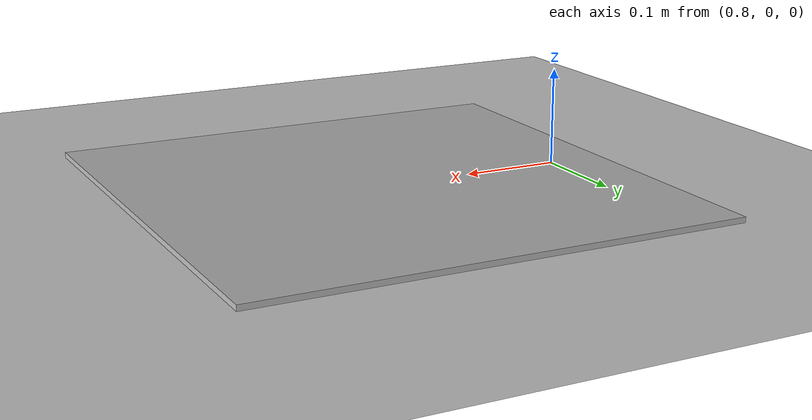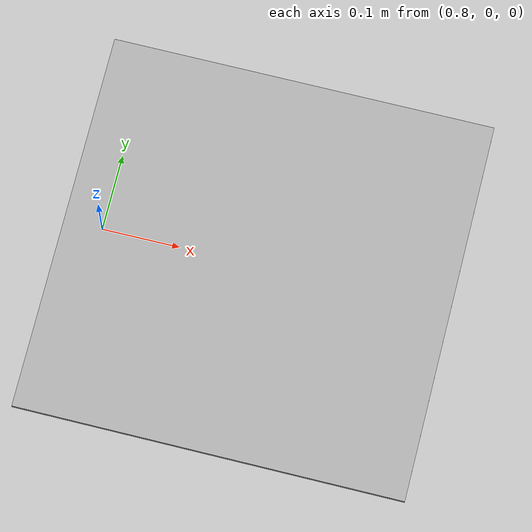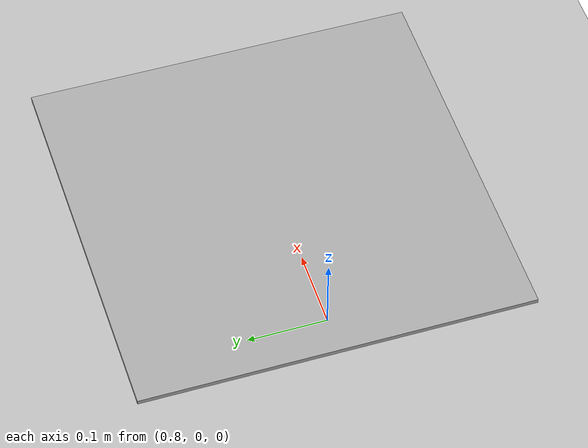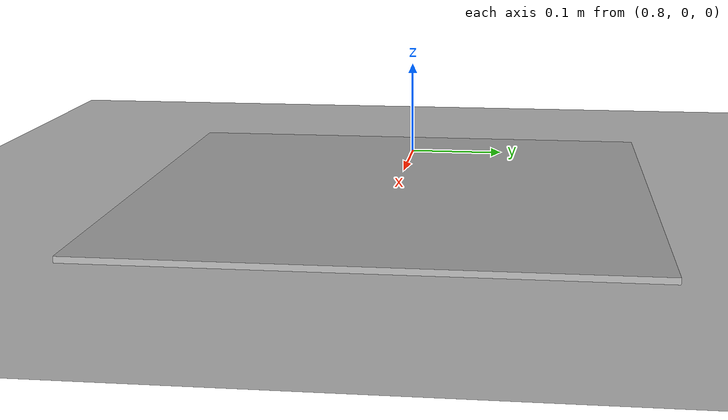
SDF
<?xml version="1.0" ?>
<sdf version="1.5">
  <world name="default">
    <!-- A global light source -->
    <include>
      <uri>model://sun</uri>
    </include>
    <!-- A ground plane -->
    <include>
      <uri>model://ground_plane</uri>
    </include>
    <include>
      <uri>model://multi_mark</uri>
	<pose>1 0 0 0 0 0</pose>
    </include>

    <physics name='default_physics' default='0' type='ode'>
      <gravity>0 0 -9.8066</gravity>
      <ode>
        <solver>
          <type>quick</type>
          <iters>10</iters>
          <sor>1.3</sor>
          <use_dynamic_moi_rescaling>0</use_dynamic_moi_rescaling>
        </solver>
        <constraints>
          <cfm>0</cfm>
          <erp>0.2</erp>
          <contact_max_correcting_vel>100</contact_max_correcting_vel>
          <contact_surface_layer>0.001</contact_surface_layer>
        </constraints>
      </ode>
      <max_step_size>0.004</max_step_size>
      <real_time_factor>1</real_time_factor>
      <real_time_update_rate>250</real_time_update_rate>
      <magnetic_field>6.0e-6 2.3e-5 -4.2e-5</magnetic_field>
    </physics>
  </world>
</sdf>

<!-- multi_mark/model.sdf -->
<sdf version='1.4'>
  <model name="multi_mark">
    <pose>0 0 0 0 0 1.57</pose>
    <static>true</static>
    <link name='link'>
      <pose>0 0 0 0 0 0</pose>
      <inertial>
        <mass>0.390</mass>
        <inertia>
          <ixx>0.00058</ixx>
          <ixy>0</ixy>
          <ixz>0</ixz>
          <iyy>0.00058</iyy>
          <iyz>0</iyz>
          <izz>0.00019</izz>
        </inertia>
      </inertial>
      <collision name='collision'>
        <geometry>
                <box>
                  <size>0.5 0.5 .01</size>
                </box>
        </geometry>
      </collision>

      <visual name='visual'>
        <geometry>
                <box>
                  <size>0.5 0.5 .01</size>
                </box>
        </geometry>

        <material>
          <script>
            <uri>model://multi_mark/materials/scripts</uri>
            <uri>model://multi_mark/materials/textures</uri>
            <name>Mark/Diffuse</name>
          </script>
        </material>
      </visual>
    </link>
  </model>
</sdf>
